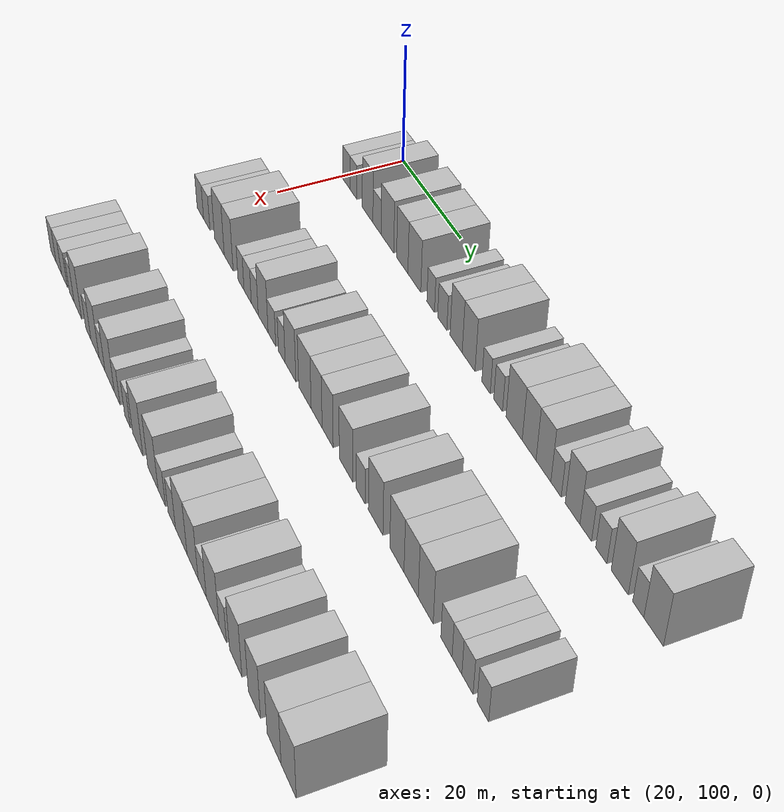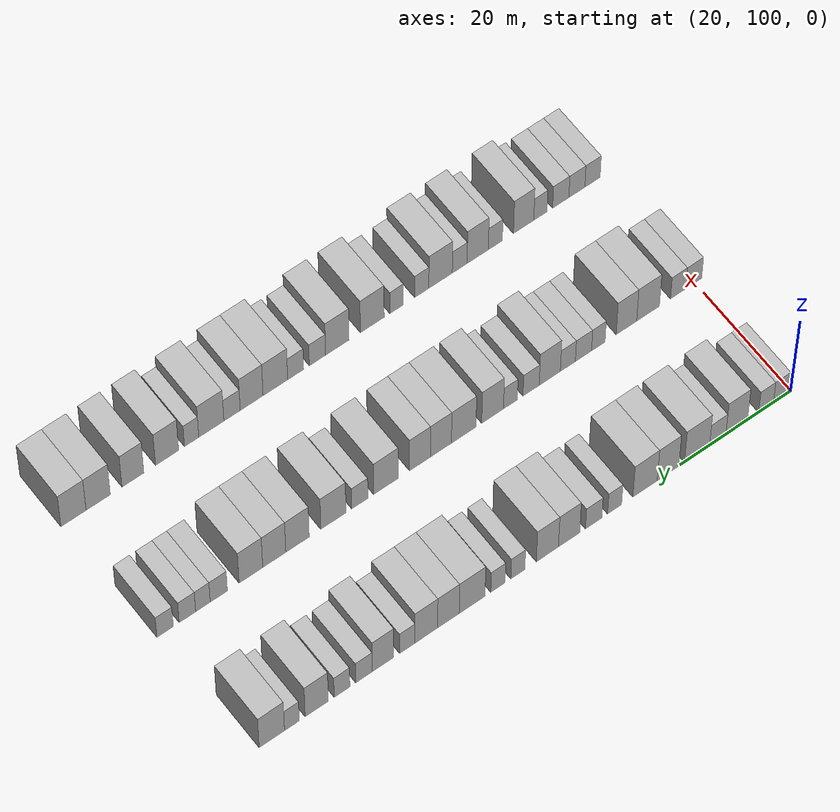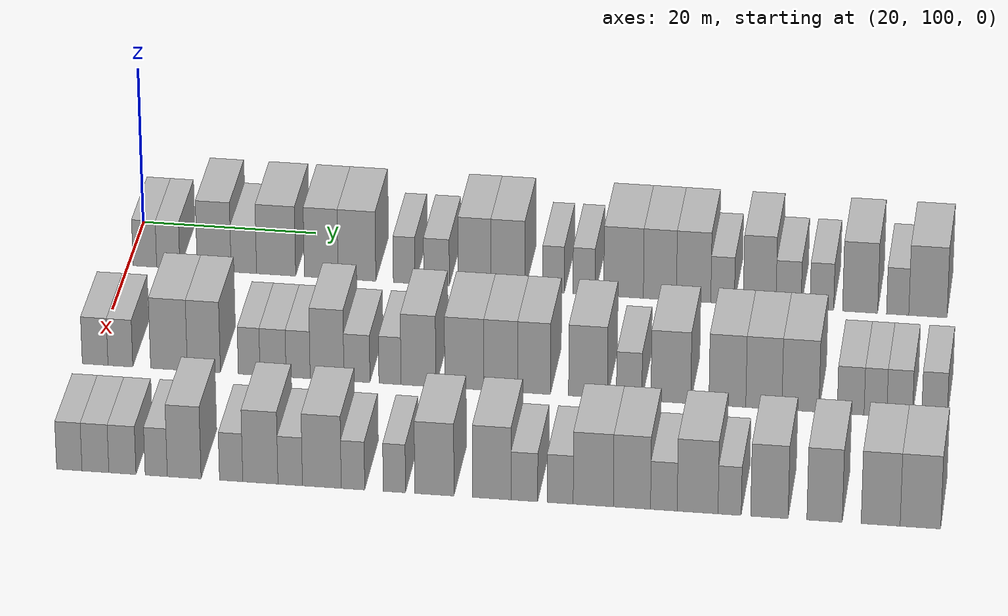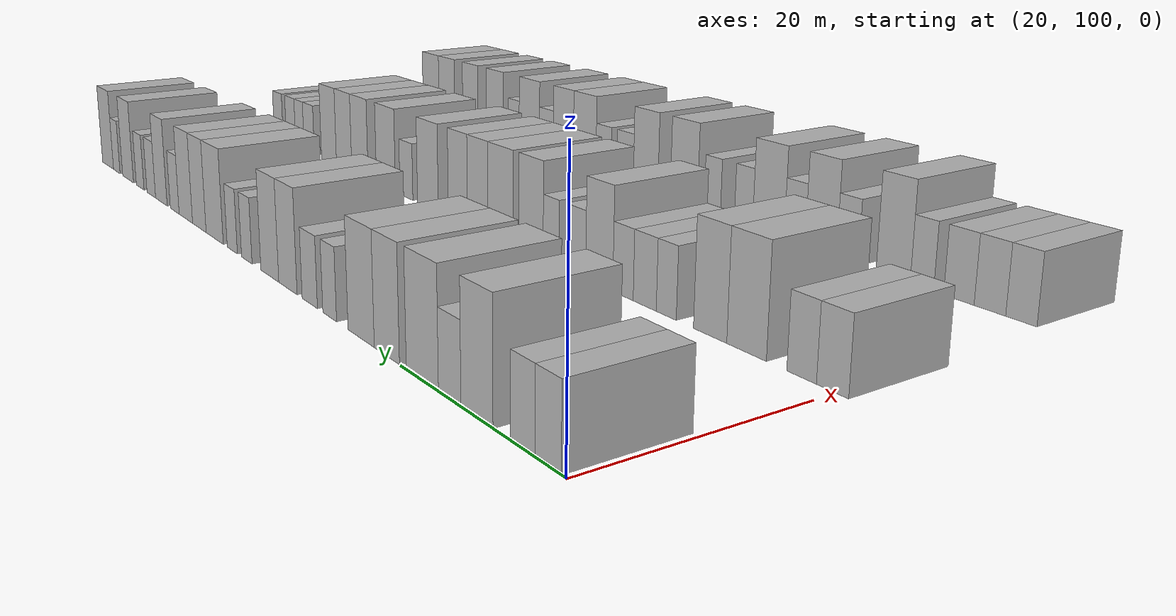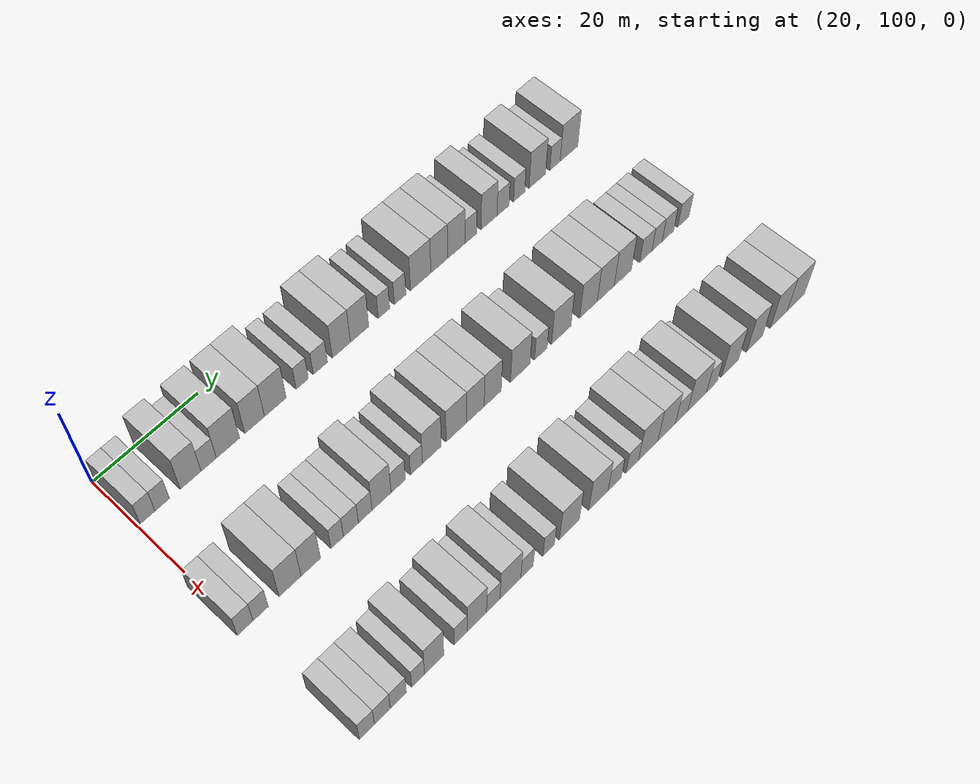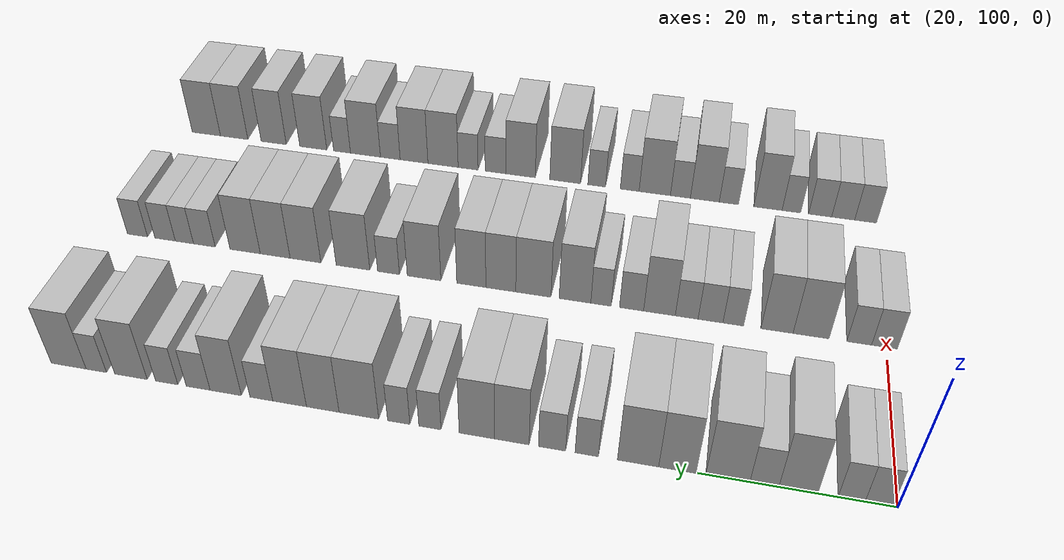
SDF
<sdf version="1.6">
 <world name="default">
  <model name="building_110">
   <static>1</static>
   <pose>25.0000 101.8987 0 0.000000 0.000000 0.000000</pose>
   <link name="link">
    <pose>0 0 3.00 0 0 0</pose>
    <collision name="collision"><geometry><box><size>10.0000 2.7181 6.0000</size></box></geometry></collision>
    <visual name="visual">
     <cast_shadows>0</cast_shadows>
     <geometry><box><size>10.0000 2.7181 6.0000</size></box></geometry>
     <material>
      <script>
       <uri>model://HANNAS_wall/materials/scripts</uri>
       <uri>model://HANNAS_wall/materials/textures</uri>
       <name>vrc/HANNAS_wall</name>
      </script>
     </material>
    </visual>
   </link>
  </model>
  <model name="building_111">
   <static>1</static>
   <pose>25.0000 104.5904 0 0.000000 0.000000 0.000000</pose>
   <link name="link">
    <pose>0 0 3.00 0 0 0</pose>
    <collision name="collision"><geometry><box><size>10.0000 2.6651 6.0000</size></box></geometry></collision>
    <visual name="visual">
     <cast_shadows>0</cast_shadows>
     <geometry><box><size>10.0000 2.6651 6.0000</size></box></geometry>
     <material>
      <script>
       <uri>model://HANNAS_wall/materials/scripts</uri>
       <uri>model://HANNAS_wall/materials/textures</uri>
       <name>vrc/HANNAS_wall</name>
      </script>
     </material>
    </visual>
   </link>
  </model>
  <model name="building_112">
   <static>1</static>
   <pose>25.0000 109.8700 0 0.000000 0.000000 0.000000</pose>
   <link name="link">
    <pose>0 0 4.50 0 0 0</pose>
    <collision name="collision"><geometry><box><size>10.0000 3.8942 9.0000</size></box></geometry></collision>
    <visual name="visual">
     <cast_shadows>0</cast_shadows>
     <geometry><box><size>10.0000 3.8942 9.0000</size></box></geometry>
     <material>
      <script>
       <uri>model://HANNAS_wall/materials/scripts</uri>
       <uri>model://HANNAS_wall/materials/textures</uri>
       <name>vrc/HANNAS_wall</name>
      </script>
     </material>
    </visual>
   </link>
  </model>
  <model name="building_113">
   <static>1</static>
   <pose>25.0000 113.2777 0 0.000000 0.000000 0.000000</pose>
   <link name="link">
    <pose>0 0 3.00 0 0 0</pose>
    <collision name="collision"><geometry><box><size>10.0000 2.9212 6.0000</size></box></geometry></collision>
    <visual name="visual">
     <cast_shadows>0</cast_shadows>
     <geometry><box><size>10.0000 2.9212 6.0000</size></box></geometry>
     <material>
      <script>
       <uri>model://HANNAS_wall/materials/scripts</uri>
       <uri>model://HANNAS_wall/materials/textures</uri>
       <name>vrc/HANNAS_wall</name>
      </script>
     </material>
    </visual>
   </link>
  </model>
  <model name="building_114">
   <static>1</static>
   <pose>25.0000 116.9785 0 0.000000 0.000000 0.000000</pose>
   <link name="link">
    <pose>0 0 4.50 0 0 0</pose>
    <collision name="collision"><geometry><box><size>10.0000 4.4804 9.0000</size></box></geometry></collision>
    <visual name="visual">
     <cast_shadows>0</cast_shadows>
     <geometry><box><size>10.0000 4.4804 9.0000</size></box></geometry>
     <material>
      <script>
       <uri>model://HANNAS_wall/materials/scripts</uri>
       <uri>model://HANNAS_wall/materials/textures</uri>
       <name>vrc/HANNAS_wall</name>
      </script>
     </material>
    </visual>
   </link>
  </model>
  <model name="building_115">
   <static>1</static>
   <pose>25.0000 122.1474 0 0.000000 0.000000 0.000000</pose>
   <link name="link">
    <pose>0 0 4.50 0 0 0</pose>
    <collision name="collision"><geometry><box><size>10.0000 3.8573 9.0000</size></box></geometry></collision>
    <visual name="visual">
     <cast_shadows>0</cast_shadows>
     <geometry><box><size>10.0000 3.8573 9.0000</size></box></geometry>
     <material>
      <script>
       <uri>model://HANNAS_wall/materials/scripts</uri>
       <uri>model://HANNAS_wall/materials/textures</uri>
       <name>vrc/HANNAS_wall</name>
      </script>
     </material>
    </visual>
   </link>
  </model>
  <model name="building_116">
   <static>1</static>
   <pose>25.0000 126.2309 0 0.000000 0.000000 0.000000</pose>
   <link name="link">
    <pose>0 0 4.50 0 0 0</pose>
    <collision name="collision"><geometry><box><size>10.0000 4.3098 9.0000</size></box></geometry></collision>
    <visual name="visual">
     <cast_shadows>0</cast_shadows>
     <geometry><box><size>10.0000 4.3098 9.0000</size></box></geometry>
     <material>
      <script>
       <uri>model://HANNAS_wall/materials/scripts</uri>
       <uri>model://HANNAS_wall/materials/textures</uri>
       <name>vrc/HANNAS_wall</name>
      </script>
     </material>
    </visual>
   </link>
  </model>
  <model name="building_117">
   <static>1</static>
   <pose>25.0000 131.6216 0 0.000000 0.000000 0.000000</pose>
   <link name="link">
    <pose>0 0 3.00 0 0 0</pose>
    <collision name="collision"><geometry><box><size>10.0000 2.4716 6.0000</size></box></geometry></collision>
    <visual name="visual">
     <cast_shadows>0</cast_shadows>
     <geometry><box><size>10.0000 2.4716 6.0000</size></box></geometry>
     <material>
      <script>
       <uri>model://HANNAS_wall/materials/scripts</uri>
       <uri>model://HANNAS_wall/materials/textures</uri>
       <name>vrc/HANNAS_wall</name>
      </script>
     </material>
    </visual>
   </link>
  </model>
  <model name="building_118">
   <static>1</static>
   <pose>25.0000 135.3126 0 0.000000 0.000000 0.000000</pose>
   <link name="link">
    <pose>0 0 3.00 0 0 0</pose>
    <collision name="collision"><geometry><box><size>10.0000 2.9104 6.0000</size></box></geometry></collision>
    <visual name="visual">
     <cast_shadows>0</cast_shadows>
     <geometry><box><size>10.0000 2.9104 6.0000</size></box></geometry>
     <material>
      <script>
       <uri>model://HANNAS_wall/materials/scripts</uri>
       <uri>model://HANNAS_wall/materials/textures</uri>
       <name>vrc/HANNAS_wall</name>
      </script>
     </material>
    </visual>
   </link>
  </model>
  <model name="building_119">
   <static>1</static>
   <pose>25.0000 139.6373 0 0.000000 0.000000 0.000000</pose>
   <link name="link">
    <pose>0 0 4.50 0 0 0</pose>
    <collision name="collision"><geometry><box><size>10.0000 3.7391 9.0000</size></box></geometry></collision>
    <visual name="visual">
     <cast_shadows>0</cast_shadows>
     <geometry><box><size>10.0000 3.7391 9.0000</size></box></geometry>
     <material>
      <script>
       <uri>model://HANNAS_wall/materials/scripts</uri>
       <uri>model://HANNAS_wall/materials/textures</uri>
       <name>vrc/HANNAS_wall</name>
      </script>
     </material>
    </visual>
   </link>
  </model>
  <model name="building_120">
   <static>1</static>
   <pose>25.0000 143.4416 0 0.000000 0.000000 0.000000</pose>
   <link name="link">
    <pose>0 0 4.50 0 0 0</pose>
    <collision name="collision"><geometry><box><size>10.0000 3.8695 9.0000</size></box></geometry></collision>
    <visual name="visual">
     <cast_shadows>0</cast_shadows>
     <geometry><box><size>10.0000 3.8695 9.0000</size></box></geometry>
     <material>
      <script>
       <uri>model://HANNAS_wall/materials/scripts</uri>
       <uri>model://HANNAS_wall/materials/textures</uri>
       <name>vrc/HANNAS_wall</name>
      </script>
     </material>
    </visual>
   </link>
  </model>
  <model name="building_121">
   <static>1</static>
   <pose>25.0000 148.6027 0 0.000000 0.000000 0.000000</pose>
   <link name="link">
    <pose>0 0 3.00 0 0 0</pose>
    <collision name="collision"><geometry><box><size>10.0000 2.4527 6.0000</size></box></geometry></collision>
    <visual name="visual">
     <cast_shadows>0</cast_shadows>
     <geometry><box><size>10.0000 2.4527 6.0000</size></box></geometry>
     <material>
      <script>
       <uri>model://HANNAS_wall/materials/scripts</uri>
       <uri>model://HANNAS_wall/materials/textures</uri>
       <name>vrc/HANNAS_wall</name>
      </script>
     </material>
    </visual>
   </link>
  </model>
  <model name="building_122">
   <static>1</static>
   <pose>25.0000 152.0724 0 0.000000 0.000000 0.000000</pose>
   <link name="link">
    <pose>0 0 3.00 0 0 0</pose>
    <collision name="collision"><geometry><box><size>10.0000 2.4867 6.0000</size></box></geometry></collision>
    <visual name="visual">
     <cast_shadows>0</cast_shadows>
     <geometry><box><size>10.0000 2.4867 6.0000</size></box></geometry>
     <material>
      <script>
       <uri>model://HANNAS_wall/materials/scripts</uri>
       <uri>model://HANNAS_wall/materials/textures</uri>
       <name>vrc/HANNAS_wall</name>
      </script>
     </material>
    </visual>
   </link>
  </model>
  <model name="building_123">
   <static>1</static>
   <pose>25.0000 156.5546 0 0.000000 0.000000 0.000000</pose>
   <link name="link">
    <pose>0 0 4.50 0 0 0</pose>
    <collision name="collision"><geometry><box><size>10.0000 4.4778 9.0000</size></box></geometry></collision>
    <visual name="visual">
     <cast_shadows>0</cast_shadows>
     <geometry><box><size>10.0000 4.4778 9.0000</size></box></geometry>
     <material>
      <script>
       <uri>model://HANNAS_wall/materials/scripts</uri>
       <uri>model://HANNAS_wall/materials/textures</uri>
       <name>vrc/HANNAS_wall</name>
      </script>
     </material>
    </visual>
   </link>
  </model>
  <model name="building_124">
   <static>1</static>
   <pose>25.0000 160.6582 0 0.000000 0.000000 0.000000</pose>
   <link name="link">
    <pose>0 0 4.50 0 0 0</pose>
    <collision name="collision"><geometry><box><size>10.0000 3.7293 9.0000</size></box></geometry></collision>
    <visual name="visual">
     <cast_shadows>0</cast_shadows>
     <geometry><box><size>10.0000 3.7293 9.0000</size></box></geometry>
     <material>
      <script>
       <uri>model://HANNAS_wall/materials/scripts</uri>
       <uri>model://HANNAS_wall/materials/textures</uri>
       <name>vrc/HANNAS_wall</name>
      </script>
     </material>
    </visual>
   </link>
  </model>
  <model name="building_125">
   <static>1</static>
   <pose>25.0000 164.4666 0 0.000000 0.000000 0.000000</pose>
   <link name="link">
    <pose>0 0 4.50 0 0 0</pose>
    <collision name="collision"><geometry><box><size>10.0000 3.8876 9.0000</size></box></geometry></collision>
    <visual name="visual">
     <cast_shadows>0</cast_shadows>
     <geometry><box><size>10.0000 3.8876 9.0000</size></box></geometry>
     <material>
      <script>
       <uri>model://HANNAS_wall/materials/scripts</uri>
       <uri>model://HANNAS_wall/materials/textures</uri>
       <name>vrc/HANNAS_wall</name>
      </script>
     </material>
    </visual>
   </link>
  </model>
  <model name="building_126">
   <static>1</static>
   <pose>25.0000 167.7399 0 0.000000 0.000000 0.000000</pose>
   <link name="link">
    <pose>0 0 3.00 0 0 0</pose>
    <collision name="collision"><geometry><box><size>10.0000 2.6589 6.0000</size></box></geometry></collision>
    <visual name="visual">
     <cast_shadows>0</cast_shadows>
     <geometry><box><size>10.0000 2.6589 6.0000</size></box></geometry>
     <material>
      <script>
       <uri>model://HANNAS_wall/materials/scripts</uri>
       <uri>model://HANNAS_wall/materials/textures</uri>
       <name>vrc/HANNAS_wall</name>
      </script>
     </material>
    </visual>
   </link>
  </model>
  <model name="building_127">
   <static>1</static>
   <pose>25.0000 171.9066 0 0.000000 0.000000 0.000000</pose>
   <link name="link">
    <pose>0 0 4.50 0 0 0</pose>
    <collision name="collision"><geometry><box><size>10.0000 3.6746 9.0000</size></box></geometry></collision>
    <visual name="visual">
     <cast_shadows>0</cast_shadows>
     <geometry><box><size>10.0000 3.6746 9.0000</size></box></geometry>
     <material>
      <script>
       <uri>model://HANNAS_wall/materials/scripts</uri>
       <uri>model://HANNAS_wall/materials/textures</uri>
       <name>vrc/HANNAS_wall</name>
      </script>
     </material>
    </visual>
   </link>
  </model>
  <model name="building_128">
   <static>1</static>
   <pose>25.0000 175.1626 0 0.000000 0.000000 0.000000</pose>
   <link name="link">
    <pose>0 0 3.00 0 0 0</pose>
    <collision name="collision"><geometry><box><size>10.0000 2.8373 6.0000</size></box></geometry></collision>
    <visual name="visual">
     <cast_shadows>0</cast_shadows>
     <geometry><box><size>10.0000 2.8373 6.0000</size></box></geometry>
     <material>
      <script>
       <uri>model://HANNAS_wall/materials/scripts</uri>
       <uri>model://HANNAS_wall/materials/textures</uri>
       <name>vrc/HANNAS_wall</name>
      </script>
     </material>
    </visual>
   </link>
  </model>
  <model name="building_129">
   <static>1</static>
   <pose>25.0000 178.9136 0 0.000000 0.000000 0.000000</pose>
   <link name="link">
    <pose>0 0 3.00 0 0 0</pose>
    <collision name="collision"><geometry><box><size>10.0000 2.6648 6.0000</size></box></geometry></collision>
    <visual name="visual">
     <cast_shadows>0</cast_shadows>
     <geometry><box><size>10.0000 2.6648 6.0000</size></box></geometry>
     <material>
      <script>
       <uri>model://HANNAS_wall/materials/scripts</uri>
       <uri>model://HANNAS_wall/materials/textures</uri>
       <name>vrc/HANNAS_wall</name>
      </script>
     </material>
    </visual>
   </link>
  </model>
  <model name="building_130">
   <static>1</static>
   <pose>25.0000 183.2159 0 0.000000 0.000000 0.000000</pose>
   <link name="link">
    <pose>0 0 4.50 0 0 0</pose>
    <collision name="collision"><geometry><box><size>10.0000 3.9399 9.0000</size></box></geometry></collision>
    <visual name="visual">
     <cast_shadows>0</cast_shadows>
     <geometry><box><size>10.0000 3.9399 9.0000</size></box></geometry>
     <material>
      <script>
       <uri>model://HANNAS_wall/materials/scripts</uri>
       <uri>model://HANNAS_wall/materials/textures</uri>
       <name>vrc/HANNAS_wall</name>
      </script>
     </material>
    </visual>
   </link>
  </model>
  <model name="building_131">
   <static>1</static>
   <pose>25.0000 187.4324 0 0.000000 0.000000 0.000000</pose>
   <link name="link">
    <pose>0 0 3.00 0 0 0</pose>
    <collision name="collision"><geometry><box><size>10.0000 2.4930 6.0000</size></box></geometry></collision>
    <visual name="visual">
     <cast_shadows>0</cast_shadows>
     <geometry><box><size>10.0000 2.4930 6.0000</size></box></geometry>
     <material>
      <script>
       <uri>model://HANNAS_wall/materials/scripts</uri>
       <uri>model://HANNAS_wall/materials/textures</uri>
       <name>vrc/HANNAS_wall</name>
      </script>
     </material>
    </visual>
   </link>
  </model>
  <model name="building_132">
   <static>1</static>
   <pose>25.0000 190.8233 0 0.000000 0.000000 0.000000</pose>
   <link name="link">
    <pose>0 0 4.50 0 0 0</pose>
    <collision name="collision"><geometry><box><size>10.0000 4.2888 9.0000</size></box></geometry></collision>
    <visual name="visual">
     <cast_shadows>0</cast_shadows>
     <geometry><box><size>10.0000 4.2888 9.0000</size></box></geometry>
     <material>
      <script>
       <uri>model://HANNAS_wall/materials/scripts</uri>
       <uri>model://HANNAS_wall/materials/textures</uri>
       <name>vrc/HANNAS_wall</name>
      </script>
     </material>
    </visual>
   </link>
  </model>
  <model name="building_299">
   <static>1</static>
   <pose>47.0000 100.2834 0 0.000000 0.000000 0.000000</pose>
   <link name="link">
    <pose>0 0 3.00 0 0 0</pose>
    <collision name="collision"><geometry><box><size>10.0000 2.8786 6.0000</size></box></geometry></collision>
    <visual name="visual">
     <cast_shadows>0</cast_shadows>
     <geometry><box><size>10.0000 2.8786 6.0000</size></box></geometry>
     <material>
      <script>
       <uri>model://HANNAS_wall/materials/scripts</uri>
       <uri>model://HANNAS_wall/materials/textures</uri>
       <name>vrc/HANNAS_wall</name>
      </script>
     </material>
    </visual>
   </link>
  </model>
  <model name="building_300">
   <static>1</static>
   <pose>47.0000 103.1145 0 0.000000 0.000000 0.000000</pose>
   <link name="link">
    <pose>0 0 3.00 0 0 0</pose>
    <collision name="collision"><geometry><box><size>10.0000 2.7837 6.0000</size></box></geometry></collision>
    <visual name="visual">
     <cast_shadows>0</cast_shadows>
     <geometry><box><size>10.0000 2.7837 6.0000</size></box></geometry>
     <material>
      <script>
       <uri>model://HANNAS_wall/materials/scripts</uri>
       <uri>model://HANNAS_wall/materials/textures</uri>
       <name>vrc/HANNAS_wall</name>
      </script>
     </material>
    </visual>
   </link>
  </model>
  <model name="building_301">
   <static>1</static>
   <pose>47.0000 108.5609 0 0.000000 0.000000 0.000000</pose>
   <link name="link">
    <pose>0 0 4.50 0 0 0</pose>
    <collision name="collision"><geometry><box><size>10.0000 4.1091 9.0000</size></box></geometry></collision>
    <visual name="visual">
     <cast_shadows>0</cast_shadows>
     <geometry><box><size>10.0000 4.1091 9.0000</size></box></geometry>
     <material>
      <script>
       <uri>model://HANNAS_wall/materials/scripts</uri>
       <uri>model://HANNAS_wall/materials/textures</uri>
       <name>vrc/HANNAS_wall</name>
      </script>
     </material>
    </visual>
   </link>
  </model>
  <model name="building_302">
   <static>1</static>
   <pose>47.0000 112.4608 0 0.000000 0.000000 0.000000</pose>
   <link name="link">
    <pose>0 0 4.50 0 0 0</pose>
    <collision name="collision"><geometry><box><size>10.0000 3.6907 9.0000</size></box></geometry></collision>
    <visual name="visual">
     <cast_shadows>0</cast_shadows>
     <geometry><box><size>10.0000 3.6907 9.0000</size></box></geometry>
     <material>
      <script>
       <uri>model://HANNAS_wall/materials/scripts</uri>
       <uri>model://HANNAS_wall/materials/textures</uri>
       <name>vrc/HANNAS_wall</name>
      </script>
     </material>
    </visual>
   </link>
  </model>
  <model name="building_303">
   <static>1</static>
   <pose>47.0000 117.5151 0 0.000000 0.000000 0.000000</pose>
   <link name="link">
    <pose>0 0 3.00 0 0 0</pose>
    <collision name="collision"><geometry><box><size>10.0000 2.4180 6.0000</size></box></geometry></collision>
    <visual name="visual">
     <cast_shadows>0</cast_shadows>
     <geometry><box><size>10.0000 2.4180 6.0000</size></box></geometry>
     <material>
      <script>
       <uri>model://HANNAS_wall/materials/scripts</uri>
       <uri>model://HANNAS_wall/materials/textures</uri>
       <name>vrc/HANNAS_wall</name>
      </script>
     </material>
    </visual>
   </link>
  </model>
  <model name="building_304">
   <static>1</static>
   <pose>47.0000 120.1765 0 0.000000 0.000000 0.000000</pose>
   <link name="link">
    <pose>0 0 3.00 0 0 0</pose>
    <collision name="collision"><geometry><box><size>10.0000 2.9046 6.0000</size></box></geometry></collision>
    <visual name="visual">
     <cast_shadows>0</cast_shadows>
     <geometry><box><size>10.0000 2.9046 6.0000</size></box></geometry>
     <material>
      <script>
       <uri>model://HANNAS_wall/materials/scripts</uri>
       <uri>model://HANNAS_wall/materials/textures</uri>
       <name>vrc/HANNAS_wall</name>
      </script>
     </material>
    </visual>
   </link>
  </model>
  <model name="building_305">
   <static>1</static>
   <pose>47.0000 122.9714 0 0.000000 0.000000 0.000000</pose>
   <link name="link">
    <pose>0 0 3.00 0 0 0</pose>
    <collision name="collision"><geometry><box><size>10.0000 2.6852 6.0000</size></box></geometry></collision>
    <visual name="visual">
     <cast_shadows>0</cast_shadows>
     <geometry><box><size>10.0000 2.6852 6.0000</size></box></geometry>
     <material>
      <script>
       <uri>model://HANNAS_wall/materials/scripts</uri>
       <uri>model://HANNAS_wall/materials/textures</uri>
       <name>vrc/HANNAS_wall</name>
      </script>
     </material>
    </visual>
   </link>
  </model>
  <model name="building_306">
   <static>1</static>
   <pose>47.0000 126.1947 0 0.000000 0.000000 0.000000</pose>
   <link name="link">
    <pose>0 0 4.50 0 0 0</pose>
    <collision name="collision"><geometry><box><size>10.0000 3.7616 9.0000</size></box></geometry></collision>
    <visual name="visual">
     <cast_shadows>0</cast_shadows>
     <geometry><box><size>10.0000 3.7616 9.0000</size></box></geometry>
     <material>
      <script>
       <uri>model://HANNAS_wall/materials/scripts</uri>
       <uri>model://HANNAS_wall/materials/textures</uri>
       <name>vrc/HANNAS_wall</name>
      </script>
     </material>
    </visual>
   </link>
  </model>
  <model name="building_307">
   <static>1</static>
   <pose>47.0000 129.5187 0 0.000000 0.000000 0.000000</pose>
   <link name="link">
    <pose>0 0 3.00 0 0 0</pose>
    <collision name="collision"><geometry><box><size>10.0000 2.8863 6.0000</size></box></geometry></collision>
    <visual name="visual">
     <cast_shadows>0</cast_shadows>
     <geometry><box><size>10.0000 2.8863 6.0000</size></box></geometry>
     <material>
      <script>
       <uri>model://HANNAS_wall/materials/scripts</uri>
       <uri>model://HANNAS_wall/materials/textures</uri>
       <name>vrc/HANNAS_wall</name>
      </script>
     </material>
    </visual>
   </link>
  </model>
  <model name="building_308">
   <static>1</static>
   <pose>47.0000 133.1873 0 0.000000 0.000000 0.000000</pose>
   <link name="link">
    <pose>0 0 3.00 0 0 0</pose>
    <collision name="collision"><geometry><box><size>10.0000 2.4508 6.0000</size></box></geometry></collision>
    <visual name="visual">
     <cast_shadows>0</cast_shadows>
     <geometry><box><size>10.0000 2.4508 6.0000</size></box></geometry>
     <material>
      <script>
       <uri>model://HANNAS_wall/materials/scripts</uri>
       <uri>model://HANNAS_wall/materials/textures</uri>
       <name>vrc/HANNAS_wall</name>
      </script>
     </material>
    </visual>
   </link>
  </model>
  <model name="building_309">
   <static>1</static>
   <pose>47.0000 136.3402 0 0.000000 0.000000 0.000000</pose>
   <link name="link">
    <pose>0 0 4.50 0 0 0</pose>
    <collision name="collision"><geometry><box><size>10.0000 3.8551 9.0000</size></box></geometry></collision>
    <visual name="visual">
     <cast_shadows>0</cast_shadows>
     <geometry><box><size>10.0000 3.8551 9.0000</size></box></geometry>
     <material>
      <script>
       <uri>model://HANNAS_wall/materials/scripts</uri>
       <uri>model://HANNAS_wall/materials/textures</uri>
       <name>vrc/HANNAS_wall</name>
      </script>
     </material>
    </visual>
   </link>
  </model>
  <model name="building_310">
   <static>1</static>
   <pose>47.0000 141.4330 0 0.000000 0.000000 0.000000</pose>
   <link name="link">
    <pose>0 0 4.50 0 0 0</pose>
    <collision name="collision"><geometry><box><size>10.0000 4.3306 9.0000</size></box></geometry></collision>
    <visual name="visual">
     <cast_shadows>0</cast_shadows>
     <geometry><box><size>10.0000 4.3306 9.0000</size></box></geometry>
     <material>
      <script>
       <uri>model://HANNAS_wall/materials/scripts</uri>
       <uri>model://HANNAS_wall/materials/textures</uri>
       <name>vrc/HANNAS_wall</name>
      </script>
     </material>
    </visual>
   </link>
  </model>
  <model name="building_311">
   <static>1</static>
   <pose>47.0000 145.4523 0 0.000000 0.000000 0.000000</pose>
   <link name="link">
    <pose>0 0 4.50 0 0 0</pose>
    <collision name="collision"><geometry><box><size>10.0000 3.7080 9.0000</size></box></geometry></collision>
    <visual name="visual">
     <cast_shadows>0</cast_shadows>
     <geometry><box><size>10.0000 3.7080 9.0000</size></box></geometry>
     <material>
      <script>
       <uri>model://HANNAS_wall/materials/scripts</uri>
       <uri>model://HANNAS_wall/materials/textures</uri>
       <name>vrc/HANNAS_wall</name>
      </script>
     </material>
    </visual>
   </link>
  </model>
  <model name="building_312">
   <static>1</static>
   <pose>47.0000 149.1286 0 0.000000 0.000000 0.000000</pose>
   <link name="link">
    <pose>0 0 4.50 0 0 0</pose>
    <collision name="collision"><geometry><box><size>10.0000 3.6446 9.0000</size></box></geometry></collision>
    <visual name="visual">
     <cast_shadows>0</cast_shadows>
     <geometry><box><size>10.0000 3.6446 9.0000</size></box></geometry>
     <material>
      <script>
       <uri>model://HANNAS_wall/materials/scripts</uri>
       <uri>model://HANNAS_wall/materials/textures</uri>
       <name>vrc/HANNAS_wall</name>
      </script>
     </material>
    </visual>
   </link>
  </model>
  <model name="building_313">
   <static>1</static>
   <pose>47.0000 155.0858 0 0.000000 0.000000 0.000000</pose>
   <link name="link">
    <pose>0 0 4.50 0 0 0</pose>
    <collision name="collision"><geometry><box><size>10.0000 4.2699 9.0000</size></box></geometry></collision>
    <visual name="visual">
     <cast_shadows>0</cast_shadows>
     <geometry><box><size>10.0000 4.2699 9.0000</size></box></geometry>
     <material>
      <script>
       <uri>model://HANNAS_wall/materials/scripts</uri>
       <uri>model://HANNAS_wall/materials/textures</uri>
       <name>vrc/HANNAS_wall</name>
      </script>
     </material>
    </visual>
   </link>
  </model>
  <model name="building_314">
   <static>1</static>
   <pose>47.0000 159.6221 0 0.000000 0.000000 0.000000</pose>
   <link name="link">
    <pose>0 0 3.00 0 0 0</pose>
    <collision name="collision"><geometry><box><size>10.0000 2.8027 6.0000</size></box></geometry></collision>
    <visual name="visual">
     <cast_shadows>0</cast_shadows>
     <geometry><box><size>10.0000 2.8027 6.0000</size></box></geometry>
     <material>
      <script>
       <uri>model://HANNAS_wall/materials/scripts</uri>
       <uri>model://HANNAS_wall/materials/textures</uri>
       <name>vrc/HANNAS_wall</name>
      </script>
     </material>
    </visual>
   </link>
  </model>
  <model name="building_315">
   <static>1</static>
   <pose>47.0000 164.2041 0 0.000000 0.000000 0.000000</pose>
   <link name="link">
    <pose>0 0 4.50 0 0 0</pose>
    <collision name="collision"><geometry><box><size>10.0000 4.3611 9.0000</size></box></geometry></collision>
    <visual name="visual">
     <cast_shadows>0</cast_shadows>
     <geometry><box><size>10.0000 4.3611 9.0000</size></box></geometry>
     <material>
      <script>
       <uri>model://HANNAS_wall/materials/scripts</uri>
       <uri>model://HANNAS_wall/materials/textures</uri>
       <name>vrc/HANNAS_wall</name>
      </script>
     </material>
    </visual>
   </link>
  </model>
  <model name="building_316">
   <static>1</static>
   <pose>47.0000 170.4081 0 0.000000 0.000000 0.000000</pose>
   <link name="link">
    <pose>0 0 4.50 0 0 0</pose>
    <collision name="collision"><geometry><box><size>10.0000 4.0470 9.0000</size></box></geometry></collision>
    <visual name="visual">
     <cast_shadows>0</cast_shadows>
     <geometry><box><size>10.0000 4.0470 9.0000</size></box></geometry>
     <material>
      <script>
       <uri>model://HANNAS_wall/materials/scripts</uri>
       <uri>model://HANNAS_wall/materials/textures</uri>
       <name>vrc/HANNAS_wall</name>
      </script>
     </material>
    </visual>
   </link>
  </model>
  <model name="building_317">
   <static>1</static>
   <pose>47.0000 174.4108 0 0.000000 0.000000 0.000000</pose>
   <link name="link">
    <pose>0 0 4.50 0 0 0</pose>
    <collision name="collision"><geometry><box><size>10.0000 3.9584 9.0000</size></box></geometry></collision>
    <visual name="visual">
     <cast_shadows>0</cast_shadows>
     <geometry><box><size>10.0000 3.9584 9.0000</size></box></geometry>
     <material>
      <script>
       <uri>model://HANNAS_wall/materials/scripts</uri>
       <uri>model://HANNAS_wall/materials/textures</uri>
       <name>vrc/HANNAS_wall</name>
      </script>
     </material>
    </visual>
   </link>
  </model>
  <model name="building_318">
   <static>1</static>
   <pose>47.0000 178.4147 0 0.000000 0.000000 0.000000</pose>
   <link name="link">
    <pose>0 0 4.50 0 0 0</pose>
    <collision name="collision"><geometry><box><size>10.0000 4.0494 9.0000</size></box></geometry></collision>
    <visual name="visual">
     <cast_shadows>0</cast_shadows>
     <geometry><box><size>10.0000 4.0494 9.0000</size></box></geometry>
     <material>
      <script>
       <uri>model://HANNAS_wall/materials/scripts</uri>
       <uri>model://HANNAS_wall/materials/textures</uri>
       <name>vrc/HANNAS_wall</name>
      </script>
     </material>
    </visual>
   </link>
  </model>
  <model name="building_319">
   <static>1</static>
   <pose>47.0000 183.9047 0 0.000000 0.000000 0.000000</pose>
   <link name="link">
    <pose>0 0 3.00 0 0 0</pose>
    <collision name="collision"><geometry><box><size>10.0000 2.9306 6.0000</size></box></geometry></collision>
    <visual name="visual">
     <cast_shadows>0</cast_shadows>
     <geometry><box><size>10.0000 2.9306 6.0000</size></box></geometry>
     <material>
      <script>
       <uri>model://HANNAS_wall/materials/scripts</uri>
       <uri>model://HANNAS_wall/materials/textures</uri>
       <name>vrc/HANNAS_wall</name>
      </script>
     </material>
    </visual>
   </link>
  </model>
  <model name="building_320">
   <static>1</static>
   <pose>47.0000 186.6112 0 0.000000 0.000000 0.000000</pose>
   <link name="link">
    <pose>0 0 3.00 0 0 0</pose>
    <collision name="collision"><geometry><box><size>10.0000 2.4824 6.0000</size></box></geometry></collision>
    <visual name="visual">
     <cast_shadows>0</cast_shadows>
     <geometry><box><size>10.0000 2.4824 6.0000</size></box></geometry>
     <material>
      <script>
       <uri>model://HANNAS_wall/materials/scripts</uri>
       <uri>model://HANNAS_wall/materials/textures</uri>
       <name>vrc/HANNAS_wall</name>
      </script>
     </material>
    </visual>
   </link>
  </model>
  <model name="building_321">
   <static>1</static>
   <pose>47.0000 189.2515 0 0.000000 0.000000 0.000000</pose>
   <link name="link">
    <pose>0 0 3.00 0 0 0</pose>
    <collision name="collision"><geometry><box><size>10.0000 2.7981 6.0000</size></box></geometry></collision>
    <visual name="visual">
     <cast_shadows>0</cast_shadows>
     <geometry><box><size>10.0000 2.7981 6.0000</size></box></geometry>
     <material>
      <script>
       <uri>model://HANNAS_wall/materials/scripts</uri>
       <uri>model://HANNAS_wall/materials/textures</uri>
       <name>vrc/HANNAS_wall</name>
      </script>
     </material>
    </visual>
   </link>
  </model>
  <model name="building_322">
   <static>1</static>
   <pose>47.0000 193.0400 0 0.000000 0.000000 0.000000</pose>
   <link name="link">
    <pose>0 0 3.00 0 0 0</pose>
    <collision name="collision"><geometry><box><size>10.0000 2.7789 6.0000</size></box></geometry></collision>
    <visual name="visual">
     <cast_shadows>0</cast_shadows>
     <geometry><box><size>10.0000 2.7789 6.0000</size></box></geometry>
     <material>
      <script>
       <uri>model://HANNAS_wall/materials/scripts</uri>
       <uri>model://HANNAS_wall/materials/textures</uri>
       <name>vrc/HANNAS_wall</name>
      </script>
     </material>
    </visual>
   </link>
  </model>
  <model name="building_494">
   <static>1</static>
   <pose>69.0000 101.5882 0 0.000000 0.000000 0.000000</pose>
   <link name="link">
    <pose>0 0 3.00 0 0 0</pose>
    <collision name="collision"><geometry><box><size>10.0000 2.7646 6.0000</size></box></geometry></collision>
    <visual name="visual">
     <cast_shadows>0</cast_shadows>
     <geometry><box><size>10.0000 2.7646 6.0000</size></box></geometry>
     <material>
      <script>
       <uri>model://HANNAS_wall/materials/scripts</uri>
       <uri>model://HANNAS_wall/materials/textures</uri>
       <name>vrc/HANNAS_wall</name>
      </script>
     </material>
    </visual>
   </link>
  </model>
  <model name="building_495">
   <static>1</static>
   <pose>69.0000 104.4325 0 0.000000 0.000000 0.000000</pose>
   <link name="link">
    <pose>0 0 3.00 0 0 0</pose>
    <collision name="collision"><geometry><box><size>10.0000 2.9241 6.0000</size></box></geometry></collision>
    <visual name="visual">
     <cast_shadows>0</cast_shadows>
     <geometry><box><size>10.0000 2.9241 6.0000</size></box></geometry>
     <material>
      <script>
       <uri>model://HANNAS_wall/materials/scripts</uri>
       <uri>model://HANNAS_wall/materials/textures</uri>
       <name>vrc/HANNAS_wall</name>
      </script>
     </material>
    </visual>
   </link>
  </model>
  <model name="building_496">
   <static>1</static>
   <pose>69.0000 107.3723 0 0.000000 0.000000 0.000000</pose>
   <link name="link">
    <pose>0 0 3.00 0 0 0</pose>
    <collision name="collision"><geometry><box><size>10.0000 2.9554 6.0000</size></box></geometry></collision>
    <visual name="visual">
     <cast_shadows>0</cast_shadows>
     <geometry><box><size>10.0000 2.9554 6.0000</size></box></geometry>
     <material>
      <script>
       <uri>model://HANNAS_wall/materials/scripts</uri>
       <uri>model://HANNAS_wall/materials/textures</uri>
       <name>vrc/HANNAS_wall</name>
      </script>
     </material>
    </visual>
   </link>
  </model>
  <model name="building_497">
   <static>1</static>
   <pose>69.0000 111.0542 0 0.000000 0.000000 0.000000</pose>
   <link name="link">
    <pose>0 0 3.00 0 0 0</pose>
    <collision name="collision"><geometry><box><size>10.0000 2.4084 6.0000</size></box></geometry></collision>
    <visual name="visual">
     <cast_shadows>0</cast_shadows>
     <geometry><box><size>10.0000 2.4084 6.0000</size></box></geometry>
     <material>
      <script>
       <uri>model://HANNAS_wall/materials/scripts</uri>
       <uri>model://HANNAS_wall/materials/textures</uri>
       <name>vrc/HANNAS_wall</name>
      </script>
     </material>
    </visual>
   </link>
  </model>
  <model name="building_498">
   <static>1</static>
   <pose>69.0000 114.0930 0 0.000000 0.000000 0.000000</pose>
   <link name="link">
    <pose>0 0 4.50 0 0 0</pose>
    <collision name="collision"><geometry><box><size>10.0000 3.6693 9.0000</size></box></geometry></collision>
    <visual name="visual">
     <cast_shadows>0</cast_shadows>
     <geometry><box><size>10.0000 3.6693 9.0000</size></box></geometry>
     <material>
      <script>
       <uri>model://HANNAS_wall/materials/scripts</uri>
       <uri>model://HANNAS_wall/materials/textures</uri>
       <name>vrc/HANNAS_wall</name>
      </script>
     </material>
    </visual>
   </link>
  </model>
  <model name="building_499">
   <static>1</static>
   <pose>69.0000 119.1909 0 0.000000 0.000000 0.000000</pose>
   <link name="link">
    <pose>0 0 3.00 0 0 0</pose>
    <collision name="collision"><geometry><box><size>10.0000 2.5265 6.0000</size></box></geometry></collision>
    <visual name="visual">
     <cast_shadows>0</cast_shadows>
     <geometry><box><size>10.0000 2.5265 6.0000</size></box></geometry>
     <material>
      <script>
       <uri>model://HANNAS_wall/materials/scripts</uri>
       <uri>model://HANNAS_wall/materials/textures</uri>
       <name>vrc/HANNAS_wall</name>
      </script>
     </material>
    </visual>
   </link>
  </model>
  <model name="building_500">
   <static>1</static>
   <pose>69.0000 122.3599 0 0.000000 0.000000 0.000000</pose>
   <link name="link">
    <pose>0 0 4.50 0 0 0</pose>
    <collision name="collision"><geometry><box><size>10.0000 3.8114 9.0000</size></box></geometry></collision>
    <visual name="visual">
     <cast_shadows>0</cast_shadows>
     <geometry><box><size>10.0000 3.8114 9.0000</size></box></geometry>
     <material>
      <script>
       <uri>model://HANNAS_wall/materials/scripts</uri>
       <uri>model://HANNAS_wall/materials/textures</uri>
       <name>vrc/HANNAS_wall</name>
      </script>
     </material>
    </visual>
   </link>
  </model>
  <model name="building_501">
   <static>1</static>
   <pose>69.0000 125.5917 0 0.000000 0.000000 0.000000</pose>
   <link name="link">
    <pose>0 0 3.00 0 0 0</pose>
    <collision name="collision"><geometry><box><size>10.0000 2.6521 6.0000</size></box></geometry></collision>
    <visual name="visual">
     <cast_shadows>0</cast_shadows>
     <geometry><box><size>10.0000 2.6521 6.0000</size></box></geometry>
     <material>
      <script>
       <uri>model://HANNAS_wall/materials/scripts</uri>
       <uri>model://HANNAS_wall/materials/textures</uri>
       <name>vrc/HANNAS_wall</name>
      </script>
     </material>
    </visual>
   </link>
  </model>
  <model name="building_502">
   <static>1</static>
   <pose>69.0000 129.0149 0 0.000000 0.000000 0.000000</pose>
   <link name="link">
    <pose>0 0 4.50 0 0 0</pose>
    <collision name="collision"><geometry><box><size>10.0000 4.1944 9.0000</size></box></geometry></collision>
    <visual name="visual">
     <cast_shadows>0</cast_shadows>
     <geometry><box><size>10.0000 4.1944 9.0000</size></box></geometry>
     <material>
      <script>
       <uri>model://HANNAS_wall/materials/scripts</uri>
       <uri>model://HANNAS_wall/materials/textures</uri>
       <name>vrc/HANNAS_wall</name>
      </script>
     </material>
    </visual>
   </link>
  </model>
  <model name="building_503">
   <static>1</static>
   <pose>69.0000 132.3791 0 0.000000 0.000000 0.000000</pose>
   <link name="link">
    <pose>0 0 3.00 0 0 0</pose>
    <collision name="collision"><geometry><box><size>10.0000 2.5339 6.0000</size></box></geometry></collision>
    <visual name="visual">
     <cast_shadows>0</cast_shadows>
     <geometry><box><size>10.0000 2.5339 6.0000</size></box></geometry>
     <material>
      <script>
       <uri>model://HANNAS_wall/materials/scripts</uri>
       <uri>model://HANNAS_wall/materials/textures</uri>
       <name>vrc/HANNAS_wall</name>
      </script>
     </material>
    </visual>
   </link>
  </model>
  <model name="building_504">
   <static>1</static>
   <pose>69.0000 136.8476 0 0.000000 0.000000 0.000000</pose>
   <link name="link">
    <pose>0 0 3.00 0 0 0</pose>
    <collision name="collision"><geometry><box><size>10.0000 2.4030 6.0000</size></box></geometry></collision>
    <visual name="visual">
     <cast_shadows>0</cast_shadows>
     <geometry><box><size>10.0000 2.4030 6.0000</size></box></geometry>
     <material>
      <script>
       <uri>model://HANNAS_wall/materials/scripts</uri>
       <uri>model://HANNAS_wall/materials/textures</uri>
       <name>vrc/HANNAS_wall</name>
      </script>
     </material>
    </visual>
   </link>
  </model>
  <model name="building_505">
   <static>1</static>
   <pose>69.0000 141.1596 0 0.000000 0.000000 0.000000</pose>
   <link name="link">
    <pose>0 0 4.50 0 0 0</pose>
    <collision name="collision"><geometry><box><size>10.0000 4.2210 9.0000</size></box></geometry></collision>
    <visual name="visual">
     <cast_shadows>0</cast_shadows>
     <geometry><box><size>10.0000 4.2210 9.0000</size></box></geometry>
     <material>
      <script>
       <uri>model://HANNAS_wall/materials/scripts</uri>
       <uri>model://HANNAS_wall/materials/textures</uri>
       <name>vrc/HANNAS_wall</name>
      </script>
     </material>
    </visual>
   </link>
  </model>
  <model name="building_506">
   <static>1</static>
   <pose>69.0000 147.3361 0 0.000000 0.000000 0.000000</pose>
   <link name="link">
    <pose>0 0 4.50 0 0 0</pose>
    <collision name="collision"><geometry><box><size>10.0000 4.1320 9.0000</size></box></geometry></collision>
    <visual name="visual">
     <cast_shadows>0</cast_shadows>
     <geometry><box><size>10.0000 4.1320 9.0000</size></box></geometry>
     <material>
      <script>
       <uri>model://HANNAS_wall/materials/scripts</uri>
       <uri>model://HANNAS_wall/materials/textures</uri>
       <name>vrc/HANNAS_wall</name>
      </script>
     </material>
    </visual>
   </link>
  </model>
  <model name="building_507">
   <static>1</static>
   <pose>69.0000 150.8352 0 0.000000 0.000000 0.000000</pose>
   <link name="link">
    <pose>0 0 3.00 0 0 0</pose>
    <collision name="collision"><geometry><box><size>10.0000 2.8662 6.0000</size></box></geometry></collision>
    <visual name="visual">
     <cast_shadows>0</cast_shadows>
     <geometry><box><size>10.0000 2.8662 6.0000</size></box></geometry>
     <material>
      <script>
       <uri>model://HANNAS_wall/materials/scripts</uri>
       <uri>model://HANNAS_wall/materials/textures</uri>
       <name>vrc/HANNAS_wall</name>
      </script>
     </material>
    </visual>
   </link>
  </model>
  <model name="building_508">
   <static>1</static>
   <pose>69.0000 154.6697 0 0.000000 0.000000 0.000000</pose>
   <link name="link">
    <pose>0 0 3.00 0 0 0</pose>
    <collision name="collision"><geometry><box><size>10.0000 2.8029 6.0000</size></box></geometry></collision>
    <visual name="visual">
     <cast_shadows>0</cast_shadows>
     <geometry><box><size>10.0000 2.8029 6.0000</size></box></geometry>
     <material>
      <script>
       <uri>model://HANNAS_wall/materials/scripts</uri>
       <uri>model://HANNAS_wall/materials/textures</uri>
       <name>vrc/HANNAS_wall</name>
      </script>
     </material>
    </visual>
   </link>
  </model>
  <model name="building_509">
   <static>1</static>
   <pose>69.0000 158.2198 0 0.000000 0.000000 0.000000</pose>
   <link name="link">
    <pose>0 0 4.50 0 0 0</pose>
    <collision name="collision"><geometry><box><size>10.0000 4.2973 9.0000</size></box></geometry></collision>
    <visual name="visual">
     <cast_shadows>0</cast_shadows>
     <geometry><box><size>10.0000 4.2973 9.0000</size></box></geometry>
     <material>
      <script>
       <uri>model://HANNAS_wall/materials/scripts</uri>
       <uri>model://HANNAS_wall/materials/textures</uri>
       <name>vrc/HANNAS_wall</name>
      </script>
     </material>
    </visual>
   </link>
  </model>
  <model name="building_510">
   <static>1</static>
   <pose>69.0000 162.3580 0 0.000000 0.000000 0.000000</pose>
   <link name="link">
    <pose>0 0 4.50 0 0 0</pose>
    <collision name="collision"><geometry><box><size>10.0000 3.9792 9.0000</size></box></geometry></collision>
    <visual name="visual">
     <cast_shadows>0</cast_shadows>
     <geometry><box><size>10.0000 3.9792 9.0000</size></box></geometry>
     <material>
      <script>
       <uri>model://HANNAS_wall/materials/scripts</uri>
       <uri>model://HANNAS_wall/materials/textures</uri>
       <name>vrc/HANNAS_wall</name>
      </script>
     </material>
    </visual>
   </link>
  </model>
  <model name="building_511">
   <static>1</static>
   <pose>69.0000 165.7686 0 0.000000 0.000000 0.000000</pose>
   <link name="link">
    <pose>0 0 3.00 0 0 0</pose>
    <collision name="collision"><geometry><box><size>10.0000 2.8421 6.0000</size></box></geometry></collision>
    <visual name="visual">
     <cast_shadows>0</cast_shadows>
     <geometry><box><size>10.0000 2.8421 6.0000</size></box></geometry>
     <material>
      <script>
       <uri>model://HANNAS_wall/materials/scripts</uri>
       <uri>model://HANNAS_wall/materials/textures</uri>
       <name>vrc/HANNAS_wall</name>
      </script>
     </material>
    </visual>
   </link>
  </model>
  <model name="building_512">
   <static>1</static>
   <pose>69.0000 169.3686 0 0.000000 0.000000 0.000000</pose>
   <link name="link">
    <pose>0 0 4.50 0 0 0</pose>
    <collision name="collision"><geometry><box><size>10.0000 4.3580 9.0000</size></box></geometry></collision>
    <visual name="visual">
     <cast_shadows>0</cast_shadows>
     <geometry><box><size>10.0000 4.3580 9.0000</size></box></geometry>
     <material>
      <script>
       <uri>model://HANNAS_wall/materials/scripts</uri>
       <uri>model://HANNAS_wall/materials/textures</uri>
       <name>vrc/HANNAS_wall</name>
      </script>
     </material>
    </visual>
   </link>
  </model>
  <model name="building_513">
   <static>1</static>
   <pose>69.0000 172.7851 0 0.000000 0.000000 0.000000</pose>
   <link name="link">
    <pose>0 0 3.00 0 0 0</pose>
    <collision name="collision"><geometry><box><size>10.0000 2.4750 6.0000</size></box></geometry></collision>
    <visual name="visual">
     <cast_shadows>0</cast_shadows>
     <geometry><box><size>10.0000 2.4750 6.0000</size></box></geometry>
     <material>
      <script>
       <uri>model://HANNAS_wall/materials/scripts</uri>
       <uri>model://HANNAS_wall/materials/textures</uri>
       <name>vrc/HANNAS_wall</name>
      </script>
     </material>
    </visual>
   </link>
  </model>
  <model name="building_514">
   <static>1</static>
   <pose>69.0000 177.0179 0 0.000000 0.000000 0.000000</pose>
   <link name="link">
    <pose>0 0 4.50 0 0 0</pose>
    <collision name="collision"><geometry><box><size>10.0000 3.9906 9.0000</size></box></geometry></collision>
    <visual name="visual">
     <cast_shadows>0</cast_shadows>
     <geometry><box><size>10.0000 3.9906 9.0000</size></box></geometry>
     <material>
      <script>
       <uri>model://HANNAS_wall/materials/scripts</uri>
       <uri>model://HANNAS_wall/materials/textures</uri>
       <name>vrc/HANNAS_wall</name>
      </script>
     </material>
    </visual>
   </link>
  </model>
  <model name="building_515">
   <static>1</static>
   <pose>69.0000 182.8930 0 0.000000 0.000000 0.000000</pose>
   <link name="link">
    <pose>0 0 4.50 0 0 0</pose>
    <collision name="collision"><geometry><box><size>10.0000 3.7595 9.0000</size></box></geometry></collision>
    <visual name="visual">
     <cast_shadows>0</cast_shadows>
     <geometry><box><size>10.0000 3.7595 9.0000</size></box></geometry>
     <material>
      <script>
       <uri>model://HANNAS_wall/materials/scripts</uri>
       <uri>model://HANNAS_wall/materials/textures</uri>
       <name>vrc/HANNAS_wall</name>
      </script>
     </material>
    </visual>
   </link>
  </model>
  <model name="building_516">
   <static>1</static>
   <pose>69.0000 188.8411 0 0.000000 0.000000 0.000000</pose>
   <link name="link">
    <pose>0 0 4.50 0 0 0</pose>
    <collision name="collision"><geometry><box><size>10.0000 4.1367 9.0000</size></box></geometry></collision>
    <visual name="visual">
     <cast_shadows>0</cast_shadows>
     <geometry><box><size>10.0000 4.1367 9.0000</size></box></geometry>
     <material>
      <script>
       <uri>model://HANNAS_wall/materials/scripts</uri>
       <uri>model://HANNAS_wall/materials/textures</uri>
       <name>vrc/HANNAS_wall</name>
      </script>
     </material>
    </visual>
   </link>
  </model>
  <model name="building_517">
   <static>1</static>
   <pose>69.0000 193.0563 0 0.000000 0.000000 0.000000</pose>
   <link name="link">
    <pose>0 0 4.50 0 0 0</pose>
    <collision name="collision"><geometry><box><size>10.0000 4.2937 9.0000</size></box></geometry></collision>
    <visual name="visual">
     <cast_shadows>0</cast_shadows>
     <geometry><box><size>10.0000 4.2937 9.0000</size></box></geometry>
     <material>
      <script>
       <uri>model://HANNAS_wall/materials/scripts</uri>
       <uri>model://HANNAS_wall/materials/textures</uri>
       <name>vrc/HANNAS_wall</name>
      </script>
     </material>
    </visual>
   </link>
  </model>
 </world>
</sdf>
